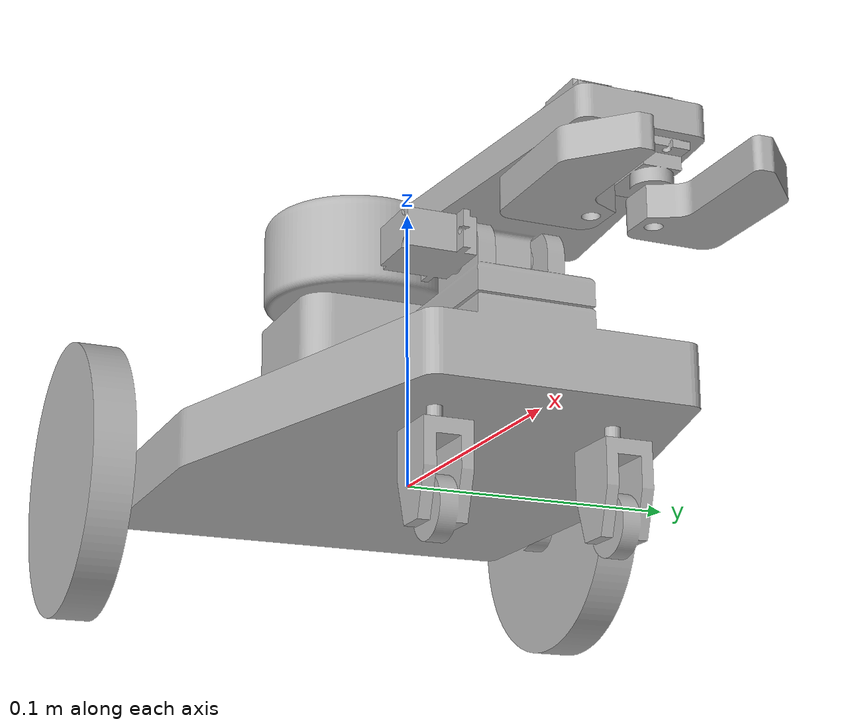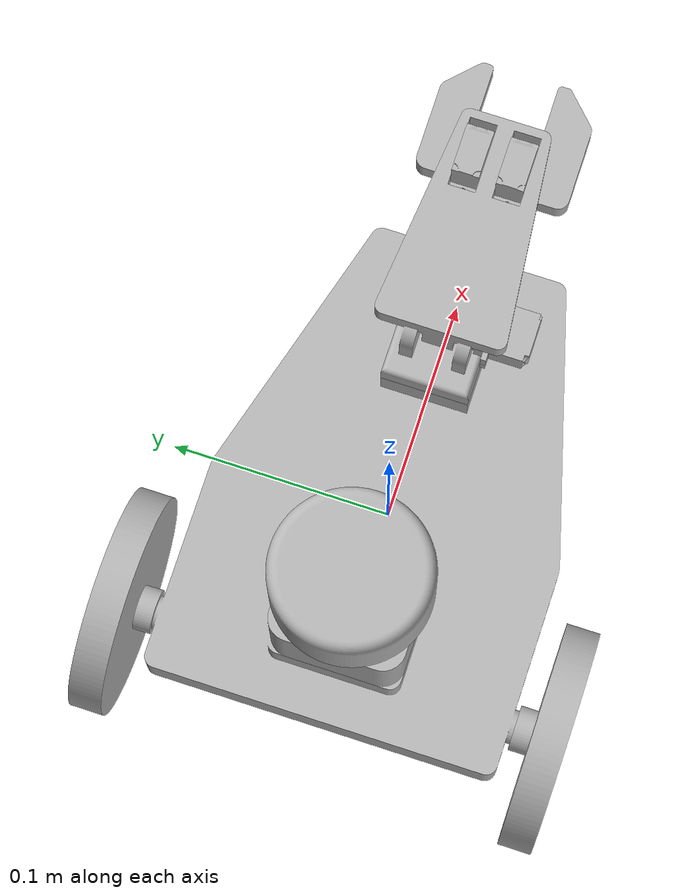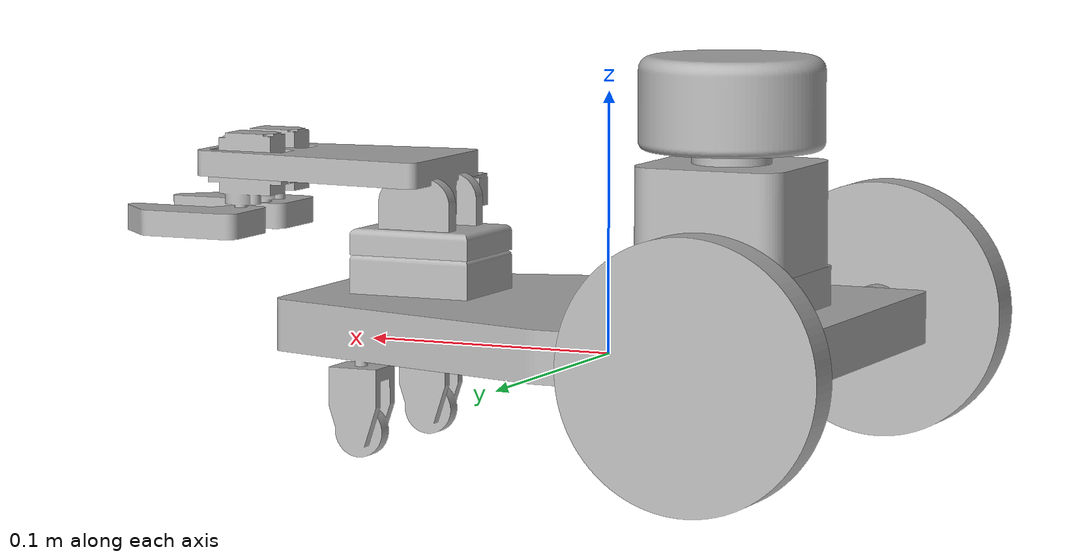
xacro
<?xml version="1.0" ?>
<robot name="drobot_intern" xmlns:xacro="http://www.ros.org/wiki/xacro">

<xacro:include filename="$(find drobot_intern_description)/urdf/materials.xacro" />
<xacro:include filename="$(find drobot_intern_description)/urdf/drobot_intern.trans" />
<xacro:include filename="$(find drobot_intern_description)/urdf/drobot_intern.gazebo" />
<link name="base_link">
  <inertial>
    <origin xyz="-0.0008842995132880539 0.0 0.01207280489909248" rpy="0 0 0"/>
    <mass value="5.509371713645723"/>
    <inertia ixx="0.009188" iyy="0.020978" izz="0.029464" ixy="0.0" iyz="-0.0" ixz="5.6e-05"/>
  </inertial>
  <visual>
    <origin xyz="0 0 0" rpy="0 0 0"/>
    <geometry>
      <mesh filename="package://drobot_intern_description/meshes/base_link.stl" scale="0.001 0.001 0.001"/>
    </geometry>
    <material name="silver"/>
  </visual>
  <collision>
    <origin xyz="0 0 0" rpy="0 0 0"/>
    <geometry>
      <mesh filename="package://drobot_intern_description/meshes/base_link.stl" scale="0.001 0.001 0.001"/>
    </geometry>
  </collision>
</link>

<link name="right_wheel_1">
  <inertial>
    <origin xyz="-1.3877787807814457e-17 -0.00731889763779528 2.1968538099770285e-14" rpy="0 0 0"/>
    <mass value="0.939603238798904"/>
    <inertia ixx="0.000598" iyy="0.001157" izz="0.000598" ixy="0.0" iyz="-0.0" ixz="0.0"/>
  </inertial>
  <visual>
    <origin xyz="0.075 0.09 -0.01" rpy="0 0 0"/>
    <geometry>
      <mesh filename="package://drobot_intern_description/meshes/right_wheel_1.stl" scale="0.001 0.001 0.001"/>
    </geometry>
    <material name="silver"/>
  </visual>
  <collision>
    <origin xyz="0.075 0.09 -0.01" rpy="0 0 0"/>
    <geometry>
      <mesh filename="package://drobot_intern_description/meshes/right_wheel_1.stl" scale="0.001 0.001 0.001"/>
    </geometry>
  </collision>
</link>

<link name="left_wheel_1">
  <inertial>
    <origin xyz="2.1913026948539027e-14 0.007318897637795266 2.949029909160572e-17" rpy="0 0 0"/>
    <mass value="0.9396032387989042"/>
    <inertia ixx="0.000598" iyy="0.001157" izz="0.000598" ixy="0.0" iyz="0.0" ixz="0.0"/>
  </inertial>
  <visual>
    <origin xyz="0.075 -0.09 -0.01" rpy="0 0 0"/>
    <geometry>
      <mesh filename="package://drobot_intern_description/meshes/left_wheel_1.stl" scale="0.001 0.001 0.001"/>
    </geometry>
    <material name="silver"/>
  </visual>
  <collision>
    <origin xyz="0.075 -0.09 -0.01" rpy="0 0 0"/>
    <geometry>
      <mesh filename="package://drobot_intern_description/meshes/left_wheel_1.stl" scale="0.001 0.001 0.001"/>
    </geometry>
  </collision>
</link>

<link name="cluster_wheel_two_1">
  <inertial>
    <origin xyz="4.1889547386375625e-11 -5.76494754711554e-12 -0.01162276797718951" rpy="0 0 0"/>
    <mass value="0.053738633411178904"/>
    <inertia ixx="6e-06" iyy="7e-06" izz="3e-06" ixy="0.0" iyz="-0.0" ixz="0.0"/>
  </inertial>
  <visual>
    <origin xyz="-0.09 -0.03 0.01" rpy="0 0 0"/>
    <geometry>
      <mesh filename="package://drobot_intern_description/meshes/cluster_wheel_two_1.stl" scale="0.001 0.001 0.001"/>
    </geometry>
    <material name="silver"/>
  </visual>
  <collision>
    <origin xyz="-0.09 -0.03 0.01" rpy="0 0 0"/>
    <geometry>
      <mesh filename="package://drobot_intern_description/meshes/cluster_wheel_two_1.stl" scale="0.001 0.001 0.001"/>
    </geometry>
  </collision>
</link>

<link name="cluster_wheel_one_1">
  <inertial>
    <origin xyz="4.1889547386375625e-11 -5.764951016562492e-12 -0.01162276797718951" rpy="0 0 0"/>
    <mass value="0.053738633411178904"/>
    <inertia ixx="6e-06" iyy="7e-06" izz="3e-06" ixy="0.0" iyz="-0.0" ixz="0.0"/>
  </inertial>
  <visual>
    <origin xyz="-0.09 0.03 0.01" rpy="0 0 0"/>
    <geometry>
      <mesh filename="package://drobot_intern_description/meshes/cluster_wheel_one_1.stl" scale="0.001 0.001 0.001"/>
    </geometry>
    <material name="silver"/>
  </visual>
  <collision>
    <origin xyz="-0.09 0.03 0.01" rpy="0 0 0"/>
    <geometry>
      <mesh filename="package://drobot_intern_description/meshes/cluster_wheel_one_1.stl" scale="0.001 0.001 0.001"/>
    </geometry>
  </collision>
</link>

<link name="lidar_base_1">
  <inertial>
    <origin xyz="-1.3877787807814457e-17 -1.1961392522033598e-17 0.021928825314826657" rpy="0 0 0"/>
    <mass value="1.1866785796887642"/>
    <inertia ixx="0.00053" iyy="0.00053" izz="0.000646" ixy="-0.0" iyz="-0.0" ixz="0.0"/>
  </inertial>
  <visual>
    <origin xyz="0.05 0.0 -0.035" rpy="0 0 0"/>
    <geometry>
      <mesh filename="package://drobot_intern_description/meshes/lidar_base_1.stl" scale="0.001 0.001 0.001"/>
    </geometry>
    <material name="silver"/>
  </visual>
  <collision>
    <origin xyz="0.05 0.0 -0.035" rpy="0 0 0"/>
    <geometry>
      <mesh filename="package://drobot_intern_description/meshes/lidar_base_1.stl" scale="0.001 0.001 0.001"/>
    </geometry>
  </collision>
</link>

<link name="lidar_lens_1">
  <inertial>
    <origin xyz="0.0 4.576976966030274e-18 0.008108172301552724" rpy="0 0 0"/>
    <mass value="0.9896369859979882"/>
    <inertia ixx="0.000409" iyy="0.000409" izz="0.000627" ixy="0.0" iyz="-0.0" ixz="0.0"/>
  </inertial>
  <visual>
    <origin xyz="0.05 0.0 -0.09" rpy="0 0 0"/>
    <geometry>
      <mesh filename="package://drobot_intern_description/meshes/lidar_lens_1.stl" scale="0.001 0.001 0.001"/>
    </geometry>
    <material name="silver"/>
  </visual>
  <collision>
    <origin xyz="0.05 0.0 -0.09" rpy="0 0 0"/>
    <geometry>
      <mesh filename="package://drobot_intern_description/meshes/lidar_lens_1.stl" scale="0.001 0.001 0.001"/>
    </geometry>
  </collision>
</link>

<link name="arm_base_1">
  <inertial>
    <origin xyz="-2.6520452500733427e-14 8.881784197001253e-18 0.009229569100810825" rpy="0 0 0"/>
    <mass value="0.2187264131527656"/>
    <inertia ixx="4.1e-05" iyy="4.8e-05" izz="6.4e-05" ixy="-0.0" iyz="-0.0" ixz="0.0"/>
  </inertial>
  <visual>
    <origin xyz="-0.075 -0.0 -0.035" rpy="0 0 0"/>
    <geometry>
      <mesh filename="package://drobot_intern_description/meshes/arm_base_1.stl" scale="0.001 0.001 0.001"/>
    </geometry>
    <material name="silver"/>
  </visual>
  <collision>
    <origin xyz="-0.075 -0.0 -0.035" rpy="0 0 0"/>
    <geometry>
      <mesh filename="package://drobot_intern_description/meshes/arm_base_1.stl" scale="0.001 0.001 0.001"/>
    </geometry>
  </collision>
</link>

<link name="Servo_base_1">
  <inertial>
    <origin xyz="0.004740162933768069 -0.017492365637518104 3.1292610863653536e-10" rpy="0 0 0"/>
    <mass value="0.058337508779555264"/>
    <inertia ixx="4e-06" iyy="3e-06" izz="6e-06" ixy="0.0" iyz="-0.0" ixz="0.0"/>
  </inertial>
  <visual>
    <origin xyz="-0.075 0.009 -0.056" rpy="0 0 0"/>
    <geometry>
      <mesh filename="package://drobot_intern_description/meshes/Servo_base_1.stl" scale="0.001 0.001 0.001"/>
    </geometry>
    <material name="silver"/>
  </visual>
  <collision>
    <origin xyz="-0.075 0.009 -0.056" rpy="0 0 0"/>
    <geometry>
      <mesh filename="package://drobot_intern_description/meshes/Servo_base_1.stl" scale="0.001 0.001 0.001"/>
    </geometry>
  </collision>
</link>

<link name="Servo_right_jaw_1">
  <inertial>
    <origin xyz="0.00030983814656612707 0.006199999850986682 -0.001457634183667969" rpy="0 0 0"/>
    <mass value="0.05833750877955526"/>
    <inertia ixx="4e-06" iyy="6e-06" izz="3e-06" ixy="0.0" iyz="-0.0" ixz="0.0"/>
  </inertial>
  <visual>
    <origin xyz="-0.1475 0.0162 -0.0675" rpy="0 0 0"/>
    <geometry>
      <mesh filename="package://drobot_intern_description/meshes/Servo_right_jaw_1.stl" scale="0.001 0.001 0.001"/>
    </geometry>
    <material name="silver"/>
  </visual>
  <collision>
    <origin xyz="-0.1475 0.0162 -0.0675" rpy="0 0 0"/>
    <geometry>
      <mesh filename="package://drobot_intern_description/meshes/Servo_right_jaw_1.stl" scale="0.001 0.001 0.001"/>
    </geometry>
  </collision>
</link>

<link name="Servo_left_jaw_1">
  <inertial>
    <origin xyz="0.00030983814656612707 -0.006199999850986666 -0.001457634183667969" rpy="0 0 0"/>
    <mass value="0.05833750877955526"/>
    <inertia ixx="4e-06" iyy="6e-06" izz="3e-06" ixy="-0.0" iyz="0.0" ixz="0.0"/>
  </inertial>
  <visual>
    <origin xyz="-0.1475 -0.0162 -0.0675" rpy="0 0 0"/>
    <geometry>
      <mesh filename="package://drobot_intern_description/meshes/Servo_left_jaw_1.stl" scale="0.001 0.001 0.001"/>
    </geometry>
    <material name="silver"/>
  </visual>
  <collision>
    <origin xyz="-0.1475 -0.0162 -0.0675" rpy="0 0 0"/>
    <geometry>
      <mesh filename="package://drobot_intern_description/meshes/Servo_left_jaw_1.stl" scale="0.001 0.001 0.001"/>
    </geometry>
  </collision>
</link>

<link name="jaw_right_1">
  <inertial>
    <origin xyz="0.01298763829935723 -0.012566578264005373 -0.004999999687075624" rpy="0 0 0"/>
    <mass value="0.08872007762107305"/>
    <inertia ixx="5e-06" iyy="2e-05" izz="2.4e-05" ixy="1e-06" iyz="0.0" ixz="0.0"/>
  </inertial>
  <visual>
    <origin xyz="-0.15255 0.01 -0.049975" rpy="0 0 0"/>
    <geometry>
      <mesh filename="package://drobot_intern_description/meshes/jaw_right_1.stl" scale="0.001 0.001 0.001"/>
    </geometry>
    <material name="silver"/>
  </visual>
  <collision>
    <origin xyz="-0.15255 0.01 -0.049975" rpy="0 0 0"/>
    <geometry>
      <mesh filename="package://drobot_intern_description/meshes/jaw_right_1.stl" scale="0.001 0.001 0.001"/>
    </geometry>
  </collision>
</link>

<link name="jaw_left_1">
  <inertial>
    <origin xyz="0.01298763829935723 0.012566578264005404 -0.004999999687075624" rpy="0 0 0"/>
    <mass value="0.08872007762107306"/>
    <inertia ixx="5e-06" iyy="2e-05" izz="2.4e-05" ixy="-1e-06" iyz="-0.0" ixz="0.0"/>
  </inertial>
  <visual>
    <origin xyz="-0.15255 -0.01 -0.049975" rpy="0 0 0"/>
    <geometry>
      <mesh filename="package://drobot_intern_description/meshes/jaw_left_1.stl" scale="0.001 0.001 0.001"/>
    </geometry>
    <material name="silver"/>
  </visual>
  <collision>
    <origin xyz="-0.15255 -0.01 -0.049975" rpy="0 0 0"/>
    <geometry>
      <mesh filename="package://drobot_intern_description/meshes/jaw_left_1.stl" scale="0.001 0.001 0.001"/>
    </geometry>
  </collision>
</link>

<link name="lifter_1">
  <inertial>
    <origin xyz="0.031334114075161415 3.523949841343552e-18 0.010907609102401579" rpy="0 0 0"/>
    <mass value="0.3449419291003793"/>
    <inertia ixx="8.3e-05" iyy="0.000255" izz="0.000327" ixy="-0.0" iyz="-0.0" ixz="-6e-06"/>
  </inertial>
  <visual>
    <origin xyz="-0.075 -0.0 -0.056" rpy="0 0 0"/>
    <geometry>
      <mesh filename="package://drobot_intern_description/meshes/lifter_1.stl" scale="0.001 0.001 0.001"/>
    </geometry>
    <material name="silver"/>
  </visual>
  <collision>
    <origin xyz="-0.075 -0.0 -0.056" rpy="0 0 0"/>
    <geometry>
      <mesh filename="package://drobot_intern_description/meshes/lifter_1.stl" scale="0.001 0.001 0.001"/>
    </geometry>
  </collision>
</link>

<joint name="base_right_wheel" type="continuous">
  <origin xyz="-0.075 -0.09 0.01" rpy="0 0 0"/>
  <parent link="base_link"/>
  <child link="right_wheel_1"/>
  <axis xyz="-0.0 1.0 0.0"/>
</joint>

<joint name="base_left_wheel" type="continuous">
  <origin xyz="-0.075 0.09 0.01" rpy="0 0 0"/>
  <parent link="base_link"/>
  <child link="left_wheel_1"/>
  <axis xyz="0.0 1.0 0.0"/>
</joint>

<joint name="base_left_cluster" type="continuous">
  <origin xyz="0.09 0.03 -0.01" rpy="0 0 0"/>
  <parent link="base_link"/>
  <child link="cluster_wheel_two_1"/>
  <axis xyz="0.0 0.0 -1.0"/>
</joint>

<joint name="base_right_cluster" type="continuous">
  <origin xyz="0.09 -0.03 -0.01" rpy="0 0 0"/>
  <parent link="base_link"/>
  <child link="cluster_wheel_one_1"/>
  <axis xyz="0.0 0.0 1.0"/>
</joint>

<joint name="lidar_base_to_base_link" type="fixed">
  <origin xyz="-0.05 0.0 0.035" rpy="0 0 0"/>
  <parent link="base_link"/>
  <child link="lidar_base_1"/>
</joint>

<joint name="lidar_lens_to_base" type="continuous">
  <origin xyz="0.0 0.0 0.055" rpy="0 0 0"/>
  <parent link="lidar_base_1"/>
  <child link="lidar_lens_1"/>
  <axis xyz="0.0 0.0 1.0"/>
</joint>

<joint name="arm_base_to_base_link" type="fixed">
  <origin xyz="0.075 0.0 0.035" rpy="0 0 0"/>
  <parent link="base_link"/>
  <child link="arm_base_1"/>
</joint>

<joint name="arm_base_servo_joint" type="fixed">
  <origin xyz="0.0 -0.009 0.021" rpy="0 0 0"/>
  <parent link="arm_base_1"/>
  <child link="Servo_base_1"/>
</joint>

<joint name="right_jaw_servo_joint" type="fixed">
  <origin xyz="0.0725 -0.0162 0.0115" rpy="0 0 0"/>
  <parent link="lifter_1"/>
  <child link="Servo_right_jaw_1"/>
</joint>

<joint name="left_jaw_servo_joint" type="fixed">
  <origin xyz="0.0725 0.0162 0.0115" rpy="0 0 0"/>
  <parent link="lifter_1"/>
  <child link="Servo_left_jaw_1"/>
</joint>

<joint name="right_jaw_to_lifter" type="continuous">
  <origin xyz="0.00505 0.0062 -0.017525" rpy="0 0 0"/>
  <parent link="Servo_right_jaw_1"/>
  <child link="jaw_right_1"/>
  <axis xyz="0.0 -0.0 1.0"/>
</joint>

<joint name="left_jaw_to_lifter" type="continuous">
  <origin xyz="0.00505 -0.0062 -0.017525" rpy="0 0 0"/>
  <parent link="Servo_left_jaw_1"/>
  <child link="jaw_left_1"/>
  <axis xyz="-0.0 -0.0 -1.0"/>
</joint>

<joint name="lifter_to_arm_base" type="continuous">
  <origin xyz="0.0 0.0 0.021" rpy="0 0 0"/>
  <parent link="arm_base_1"/>
  <child link="lifter_1"/>
  <axis xyz="0.0 -1.0 0.0"/>
</joint>

</robot>

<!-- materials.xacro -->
<robot name="drobot_intern" xmlns:xacro="http://www.ros.org/wiki/xacro" >

<material name="silver">
  <color rgba="0.700 0.700 0.700 1.000"/>
</material>

</robot>

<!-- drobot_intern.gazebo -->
<robot name="drobot_intern" xmlns:xacro="http://www.ros.org/wiki/xacro" >

<xacro:property name="body_color" value="Gazebo/Silver" />

<gazebo>
  <plugin name="control" filename="libgazebo_ros_control.so"/>
</gazebo>
<gazebo reference="base_link">
  <material>${body_color}</material>
  <mu1>0.05</mu1>
  <mu2>0.05</mu2>
  <selfCollide>true</selfCollide>
  <gravity>true</gravity>
</gazebo>

<gazebo reference="right_wheel_1">
  <material>${body_color}</material>
  <mu1>0.8</mu1>
  <mu2>0.8</mu2>
  <selfCollide>true</selfCollide>
</gazebo>

<gazebo reference="left_wheel_1">
  <material>${body_color}</material>
  <mu1>0.8</mu1>
  <mu2>0.8</mu2>
  <selfCollide>true</selfCollide>
</gazebo>

<gazebo reference="cluster_wheel_two_1">
  <material>${body_color}</material>
  <mu1>0.1</mu1>
  <mu2>0.1</mu2>
  <selfCollide>true</selfCollide>
</gazebo>

<gazebo reference="cluster_wheel_one_1">
  <material>${body_color}</material>
  <mu1>0.1</mu1>
  <mu2>0.1</mu2>
  <selfCollide>true</selfCollide>
</gazebo>

<gazebo reference="lidar_base_1">
  <material>${body_color}</material>
  <mu1>0.2</mu1>
  <mu2>0.2</mu2>
  <selfCollide>true</selfCollide>
</gazebo>

<gazebo reference="lidar_lens_1">
  <material>${body_color}</material>
  <mu1>0.2</mu1>
  <mu2>0.2</mu2>
  <selfCollide>true</selfCollide>
</gazebo>

<gazebo reference="arm_base_1">
  <material>${body_color}</material>
  <mu1>0.2</mu1>
  <mu2>0.2</mu2>
  <selfCollide>true</selfCollide>
</gazebo>

<gazebo reference="Servo_base_1">
  <material>${body_color}</material>
  <mu1>0.2</mu1>
  <mu2>0.2</mu2>
  <selfCollide>true</selfCollide>
</gazebo>

<gazebo reference="Servo_right_jaw_1">
  <material>${body_color}</material>
  <mu1>0.2</mu1>
  <mu2>0.2</mu2>
  <selfCollide>true</selfCollide>
</gazebo>

<gazebo reference="Servo_left_jaw_1">
  <material>${body_color}</material>
  <mu1>0.2</mu1>
  <mu2>0.2</mu2>
  <selfCollide>true</selfCollide>
</gazebo>

<gazebo reference="jaw_right_1">
  <material>${body_color}</material>
  <mu1>0.2</mu1>
  <mu2>0.2</mu2>
  <selfCollide>true</selfCollide>
</gazebo>

<gazebo reference="jaw_left_1">
  <material>${body_color}</material>
  <mu1>0.2</mu1>
  <mu2>0.2</mu2>
  <selfCollide>true</selfCollide>
</gazebo>

<gazebo reference="lifter_1">
  <material>${body_color}</material>
  <mu1>0.2</mu1>
  <mu2>0.2</mu2>
  <selfCollide>true</selfCollide>
</gazebo>

<gazebo>
  <plugin name="differential_drive_controller" filename="libgazebo_ros_diff_drive.so">

    <!-- Plugin update rate in Hz -->
    <updateRate>100</updateRate>

    <!-- Name of left joint, defaults to `left_joint` -->
    <leftJoint>base_left_wheel</leftJoint>

    <!-- Name of right joint, defaults to `right_joint` -->
    <rightJoint>base_right_wheel</rightJoint>

    <!-- The distance from the center of one wheel to the other, in meters, defaults to 0.34 m -->
    <wheelSeparation>0.18</wheelSeparation>

    <!-- Diameter of the wheels, in meters, defaults to 0.15 m -->
    <wheelDiameter>0.1</wheelDiameter>

    <!-- Wheel acceleration, in rad/s^2, defaults to 0.0 rad/s^2 -->
    <wheelAcceleration>1.0</wheelAcceleration>

    <!-- Maximum torque which the wheels can produce, in Nm, defaults to 5 Nm -->
    <wheelTorque>50</wheelTorque>

    <!-- Topic to receive geometry_msgs/Twist message commands, defaults to `cmd_vel` -->
    <commandTopic>cmd_vel</commandTopic>

    <!-- Topic to publish nav_msgs/Odometry messages, defaults to `odom` -->
    <odometryTopic>odom</odometryTopic>

    <!-- Odometry frame, defaults to `odom` -->
    <odometryFrame>odom</odometryFrame>

    <!-- Robot frame to calculate odometry from, defaults to `base_footprint` -->
    <robotBaseFrame>base_footprint</robotBaseFrame>

    <!-- Odometry source, 0 for ENCODER, 1 for WORLD, defaults to WORLD -->
    <odometrySource>1</odometrySource>

    <!-- Set to true to publish transforms for the wheel links, defaults to false -->
    <publishWheelTF>true</publishWheelTF>

    <!-- Set to true to publish transforms for the odometry, defaults to true -->
    <publishOdom>true</publishOdom>

    <!-- Set to true to publish sensor_msgs/JointState on /joint_states for the wheel joints, defaults to false -->
    <publishWheelJointState>true</publishWheelJointState>

    <!-- Set to true to swap right and left wheels, defaults to true -->
    <legacyMode>false</legacyMode>
  </plugin>
</gazebo>

<gazebo reference="lidar_lens_1">
    <sensor type="ray" name="head_hokuyo_sensor">
      <pose>0 0 0 0 0 0</pose>
      <visualize>true</visualize>
      <update_rate>40</update_rate>
      <ray>
        <scan>
          <horizontal>
            <samples>720</samples>
            <resolution>1</resolution>
            <min_angle>-1.570796</min_angle>
            <max_angle>1.570796</max_angle>
          </horizontal>
        </scan>
        <range>
          <min>0.10</min>
          <max>30.0</max>
          <resolution>0.01</resolution>
        </range>
        <noise>
          <type>gaussian</type>
          <mean>0.0</mean>
          <stddev>0.01</stddev>
        </noise>
      </ray>
      <plugin name="gazebo_ros_head_hokuyo_controller" filename="libgazebo_ros_laser.so">
        <topicName>/rrbot/laser/scan</topicName>
        <frameName>hokuyo_link</frameName>
      </plugin>
    </sensor>
  </gazebo>
</robot>
